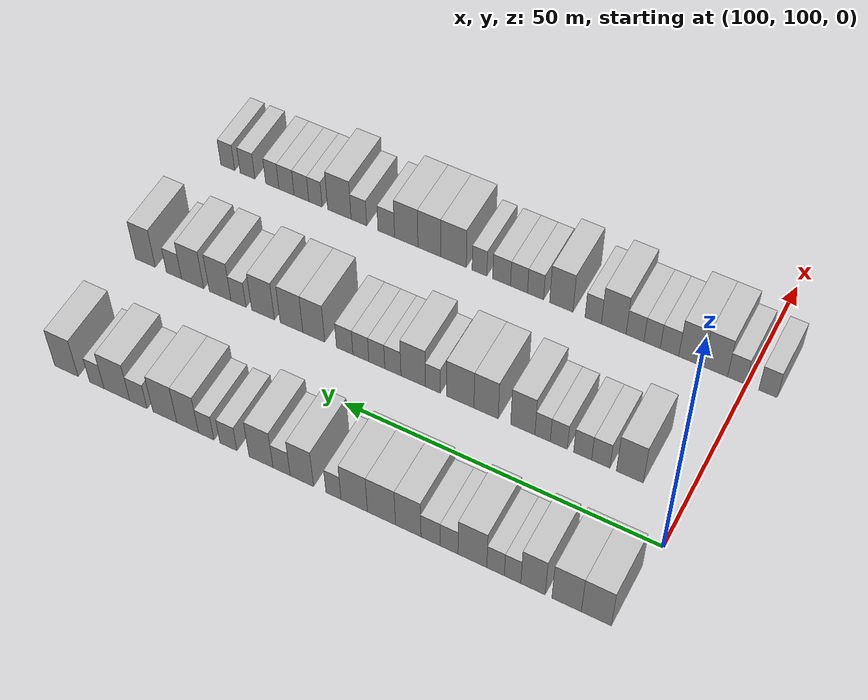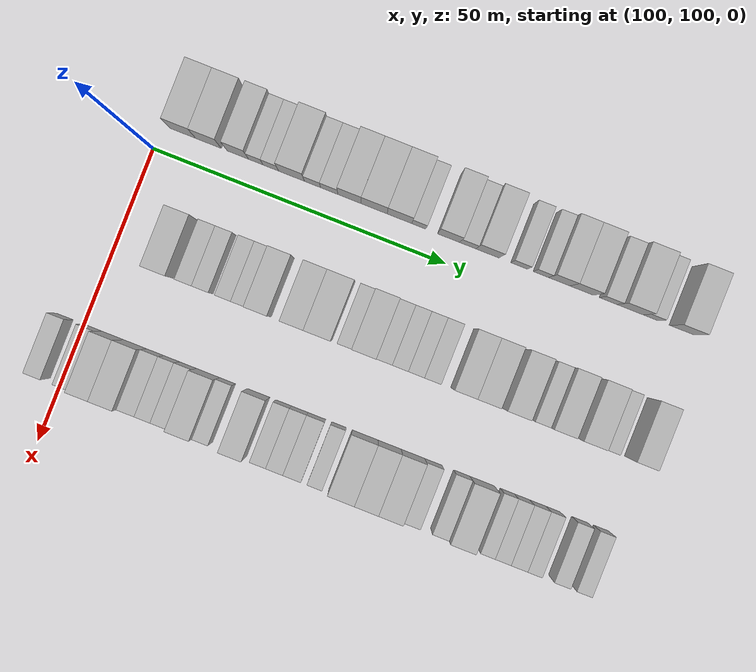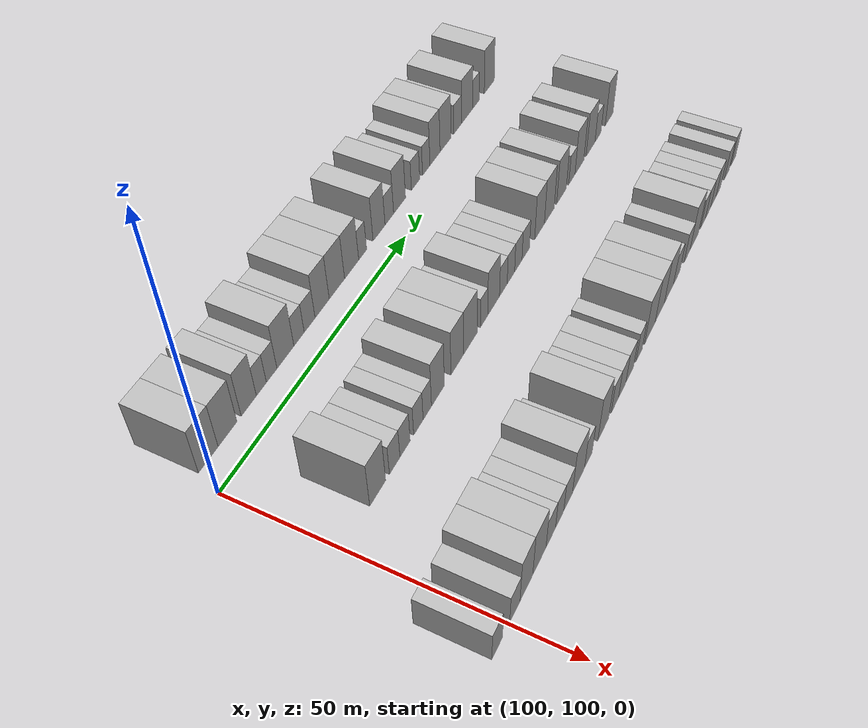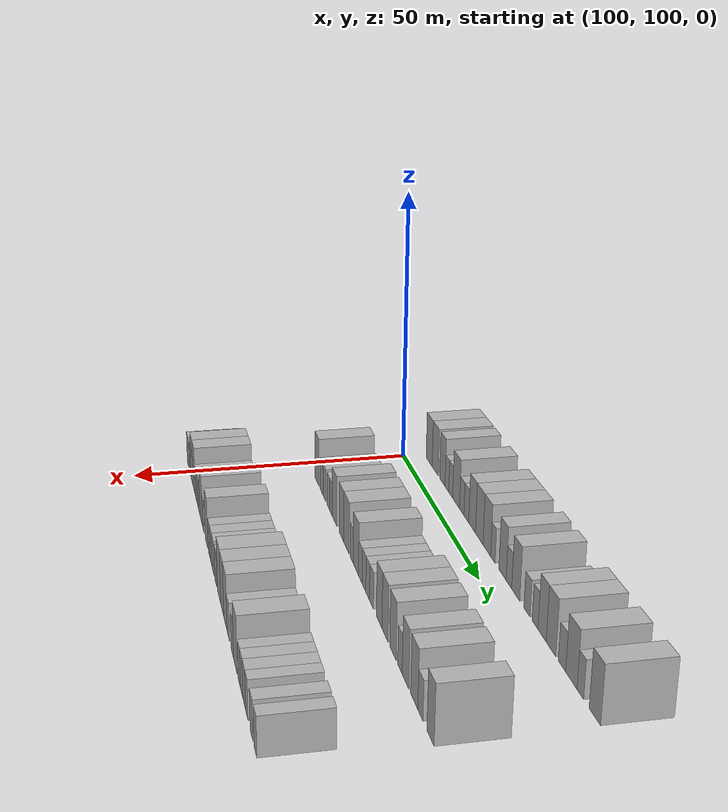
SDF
<sdf version="1.6">
 <world name="default">
  <model name="building_678">
   <static>1</static>
   <pose>91.0000 103.5318 0 0.000000 0.000000 0.000000</pose>
   <link name="link">
    <pose>0 0 4.50 0 0 0</pose>
    <collision name="collision"><geometry><box><size>10.0000 4.4158 9.0000</size></box></geometry></collision>
    <visual name="visual">
     <cast_shadows>0</cast_shadows>
     <geometry><box><size>10.0000 4.4158 9.0000</size></box></geometry>
     <material>
      <script>
       <uri>model://HANNAS_wall/materials/scripts</uri>
       <uri>model://HANNAS_wall/materials/textures</uri>
       <name>vrc/HANNAS_wall</name>
      </script>
     </material>
    </visual>
   </link>
  </model>
  <model name="building_679">
   <static>1</static>
   <pose>91.0000 107.9198 0 0.000000 0.000000 0.000000</pose>
   <link name="link">
    <pose>0 0 4.50 0 0 0</pose>
    <collision name="collision"><geometry><box><size>10.0000 4.3601 9.0000</size></box></geometry></collision>
    <visual name="visual">
     <cast_shadows>0</cast_shadows>
     <geometry><box><size>10.0000 4.3601 9.0000</size></box></geometry>
     <material>
      <script>
       <uri>model://HANNAS_wall/materials/scripts</uri>
       <uri>model://HANNAS_wall/materials/textures</uri>
       <name>vrc/HANNAS_wall</name>
      </script>
     </material>
    </visual>
   </link>
  </model>
  <model name="building_680">
   <static>1</static>
   <pose>91.0000 112.9314 0 0.000000 0.000000 0.000000</pose>
   <link name="link">
    <pose>0 0 4.50 0 0 0</pose>
    <collision name="collision"><geometry><box><size>10.0000 3.6631 9.0000</size></box></geometry></collision>
    <visual name="visual">
     <cast_shadows>0</cast_shadows>
     <geometry><box><size>10.0000 3.6631 9.0000</size></box></geometry>
     <material>
      <script>
       <uri>model://HANNAS_wall/materials/scripts</uri>
       <uri>model://HANNAS_wall/materials/textures</uri>
       <name>vrc/HANNAS_wall</name>
      </script>
     </material>
    </visual>
   </link>
  </model>
  <model name="building_681">
   <static>1</static>
   <pose>91.0000 116.0062 0 0.000000 0.000000 0.000000</pose>
   <link name="link">
    <pose>0 0 3.00 0 0 0</pose>
    <collision name="collision"><geometry><box><size>10.0000 2.4865 6.0000</size></box></geometry></collision>
    <visual name="visual">
     <cast_shadows>0</cast_shadows>
     <geometry><box><size>10.0000 2.4865 6.0000</size></box></geometry>
     <material>
      <script>
       <uri>model://HANNAS_wall/materials/scripts</uri>
       <uri>model://HANNAS_wall/materials/textures</uri>
       <name>vrc/HANNAS_wall</name>
      </script>
     </material>
    </visual>
   </link>
  </model>
  <model name="building_682">
   <static>1</static>
   <pose>91.0000 118.5741 0 0.000000 0.000000 0.000000</pose>
   <link name="link">
    <pose>0 0 3.00 0 0 0</pose>
    <collision name="collision"><geometry><box><size>10.0000 2.6494 6.0000</size></box></geometry></collision>
    <visual name="visual">
     <cast_shadows>0</cast_shadows>
     <geometry><box><size>10.0000 2.6494 6.0000</size></box></geometry>
     <material>
      <script>
       <uri>model://HANNAS_wall/materials/scripts</uri>
       <uri>model://HANNAS_wall/materials/textures</uri>
       <name>vrc/HANNAS_wall</name>
      </script>
     </material>
    </visual>
   </link>
  </model>
  <model name="building_683">
   <static>1</static>
   <pose>91.0000 122.1030 0 0.000000 0.000000 0.000000</pose>
   <link name="link">
    <pose>0 0 4.50 0 0 0</pose>
    <collision name="collision"><geometry><box><size>10.0000 4.4084 9.0000</size></box></geometry></collision>
    <visual name="visual">
     <cast_shadows>0</cast_shadows>
     <geometry><box><size>10.0000 4.4084 9.0000</size></box></geometry>
     <material>
      <script>
       <uri>model://HANNAS_wall/materials/scripts</uri>
       <uri>model://HANNAS_wall/materials/textures</uri>
       <name>vrc/HANNAS_wall</name>
      </script>
     </material>
    </visual>
   </link>
  </model>
  <model name="building_684">
   <static>1</static>
   <pose>91.0000 125.6815 0 0.000000 0.000000 0.000000</pose>
   <link name="link">
    <pose>0 0 3.00 0 0 0</pose>
    <collision name="collision"><geometry><box><size>10.0000 2.7487 6.0000</size></box></geometry></collision>
    <visual name="visual">
     <cast_shadows>0</cast_shadows>
     <geometry><box><size>10.0000 2.7487 6.0000</size></box></geometry>
     <material>
      <script>
       <uri>model://HANNAS_wall/materials/scripts</uri>
       <uri>model://HANNAS_wall/materials/textures</uri>
       <name>vrc/HANNAS_wall</name>
      </script>
     </material>
    </visual>
   </link>
  </model>
  <model name="building_685">
   <static>1</static>
   <pose>91.0000 128.5347 0 0.000000 0.000000 0.000000</pose>
   <link name="link">
    <pose>0 0 3.00 0 0 0</pose>
    <collision name="collision"><geometry><box><size>10.0000 2.9578 6.0000</size></box></geometry></collision>
    <visual name="visual">
     <cast_shadows>0</cast_shadows>
     <geometry><box><size>10.0000 2.9578 6.0000</size></box></geometry>
     <material>
      <script>
       <uri>model://HANNAS_wall/materials/scripts</uri>
       <uri>model://HANNAS_wall/materials/textures</uri>
       <name>vrc/HANNAS_wall</name>
      </script>
     </material>
    </visual>
   </link>
  </model>
  <model name="building_686">
   <static>1</static>
   <pose>91.0000 132.0032 0 0.000000 0.000000 0.000000</pose>
   <link name="link">
    <pose>0 0 4.50 0 0 0</pose>
    <collision name="collision"><geometry><box><size>10.0000 3.9791 9.0000</size></box></geometry></collision>
    <visual name="visual">
     <cast_shadows>0</cast_shadows>
     <geometry><box><size>10.0000 3.9791 9.0000</size></box></geometry>
     <material>
      <script>
       <uri>model://HANNAS_wall/materials/scripts</uri>
       <uri>model://HANNAS_wall/materials/textures</uri>
       <name>vrc/HANNAS_wall</name>
      </script>
     </material>
    </visual>
   </link>
  </model>
  <model name="building_687">
   <static>1</static>
   <pose>91.0000 136.2074 0 0.000000 0.000000 0.000000</pose>
   <link name="link">
    <pose>0 0 4.50 0 0 0</pose>
    <collision name="collision"><geometry><box><size>10.0000 4.4292 9.0000</size></box></geometry></collision>
    <visual name="visual">
     <cast_shadows>0</cast_shadows>
     <geometry><box><size>10.0000 4.4292 9.0000</size></box></geometry>
     <material>
      <script>
       <uri>model://HANNAS_wall/materials/scripts</uri>
       <uri>model://HANNAS_wall/materials/textures</uri>
       <name>vrc/HANNAS_wall</name>
      </script>
     </material>
    </visual>
   </link>
  </model>
  <model name="building_688">
   <static>1</static>
   <pose>91.0000 140.5262 0 0.000000 0.000000 0.000000</pose>
   <link name="link">
    <pose>0 0 4.50 0 0 0</pose>
    <collision name="collision"><geometry><box><size>10.0000 4.2083 9.0000</size></box></geometry></collision>
    <visual name="visual">
     <cast_shadows>0</cast_shadows>
     <geometry><box><size>10.0000 4.2083 9.0000</size></box></geometry>
     <material>
      <script>
       <uri>model://HANNAS_wall/materials/scripts</uri>
       <uri>model://HANNAS_wall/materials/textures</uri>
       <name>vrc/HANNAS_wall</name>
      </script>
     </material>
    </visual>
   </link>
  </model>
  <model name="building_689">
   <static>1</static>
   <pose>91.0000 143.8343 0 0.000000 0.000000 0.000000</pose>
   <link name="link">
    <pose>0 0 3.00 0 0 0</pose>
    <collision name="collision"><geometry><box><size>10.0000 2.4079 6.0000</size></box></geometry></collision>
    <visual name="visual">
     <cast_shadows>0</cast_shadows>
     <geometry><box><size>10.0000 2.4079 6.0000</size></box></geometry>
     <material>
      <script>
       <uri>model://HANNAS_wall/materials/scripts</uri>
       <uri>model://HANNAS_wall/materials/textures</uri>
       <name>vrc/HANNAS_wall</name>
      </script>
     </material>
    </visual>
   </link>
  </model>
  <model name="building_690">
   <static>1</static>
   <pose>91.0000 148.9311 0 0.000000 0.000000 0.000000</pose>
   <link name="link">
    <pose>0 0 4.50 0 0 0</pose>
    <collision name="collision"><geometry><box><size>10.0000 3.7859 9.0000</size></box></geometry></collision>
    <visual name="visual">
     <cast_shadows>0</cast_shadows>
     <geometry><box><size>10.0000 3.7859 9.0000</size></box></geometry>
     <material>
      <script>
       <uri>model://HANNAS_wall/materials/scripts</uri>
       <uri>model://HANNAS_wall/materials/textures</uri>
       <name>vrc/HANNAS_wall</name>
      </script>
     </material>
    </visual>
   </link>
  </model>
  <model name="building_691">
   <static>1</static>
   <pose>91.0000 152.2202 0 0.000000 0.000000 0.000000</pose>
   <link name="link">
    <pose>0 0 3.00 0 0 0</pose>
    <collision name="collision"><geometry><box><size>10.0000 2.7922 6.0000</size></box></geometry></collision>
    <visual name="visual">
     <cast_shadows>0</cast_shadows>
     <geometry><box><size>10.0000 2.7922 6.0000</size></box></geometry>
     <material>
      <script>
       <uri>model://HANNAS_wall/materials/scripts</uri>
       <uri>model://HANNAS_wall/materials/textures</uri>
       <name>vrc/HANNAS_wall</name>
      </script>
     </material>
    </visual>
   </link>
  </model>
  <model name="building_692">
   <static>1</static>
   <pose>91.0000 155.5841 0 0.000000 0.000000 0.000000</pose>
   <link name="link">
    <pose>0 0 4.50 0 0 0</pose>
    <collision name="collision"><geometry><box><size>10.0000 3.9356 9.0000</size></box></geometry></collision>
    <visual name="visual">
     <cast_shadows>0</cast_shadows>
     <geometry><box><size>10.0000 3.9356 9.0000</size></box></geometry>
     <material>
      <script>
       <uri>model://HANNAS_wall/materials/scripts</uri>
       <uri>model://HANNAS_wall/materials/textures</uri>
       <name>vrc/HANNAS_wall</name>
      </script>
     </material>
    </visual>
   </link>
  </model>
  <model name="building_693">
   <static>1</static>
   <pose>91.0000 160.9697 0 0.000000 0.000000 0.000000</pose>
   <link name="link">
    <pose>0 0 3.00 0 0 0</pose>
    <collision name="collision"><geometry><box><size>10.0000 2.8356 6.0000</size></box></geometry></collision>
    <visual name="visual">
     <cast_shadows>0</cast_shadows>
     <geometry><box><size>10.0000 2.8356 6.0000</size></box></geometry>
     <material>
      <script>
       <uri>model://HANNAS_wall/materials/scripts</uri>
       <uri>model://HANNAS_wall/materials/textures</uri>
       <name>vrc/HANNAS_wall</name>
      </script>
     </material>
    </visual>
   </link>
  </model>
  <model name="building_694">
   <static>1</static>
   <pose>91.0000 164.6876 0 0.000000 0.000000 0.000000</pose>
   <link name="link">
    <pose>0 0 3.00 0 0 0</pose>
    <collision name="collision"><geometry><box><size>10.0000 2.6003 6.0000</size></box></geometry></collision>
    <visual name="visual">
     <cast_shadows>0</cast_shadows>
     <geometry><box><size>10.0000 2.6003 6.0000</size></box></geometry>
     <material>
      <script>
       <uri>model://HANNAS_wall/materials/scripts</uri>
       <uri>model://HANNAS_wall/materials/textures</uri>
       <name>vrc/HANNAS_wall</name>
      </script>
     </material>
    </visual>
   </link>
  </model>
  <model name="building_695">
   <static>1</static>
   <pose>91.0000 167.8109 0 0.000000 0.000000 0.000000</pose>
   <link name="link">
    <pose>0 0 4.50 0 0 0</pose>
    <collision name="collision"><geometry><box><size>10.0000 3.6463 9.0000</size></box></geometry></collision>
    <visual name="visual">
     <cast_shadows>0</cast_shadows>
     <geometry><box><size>10.0000 3.6463 9.0000</size></box></geometry>
     <material>
      <script>
       <uri>model://HANNAS_wall/materials/scripts</uri>
       <uri>model://HANNAS_wall/materials/textures</uri>
       <name>vrc/HANNAS_wall</name>
      </script>
     </material>
    </visual>
   </link>
  </model>
  <model name="building_696">
   <static>1</static>
   <pose>91.0000 171.6643 0 0.000000 0.000000 0.000000</pose>
   <link name="link">
    <pose>0 0 4.50 0 0 0</pose>
    <collision name="collision"><geometry><box><size>10.0000 4.0604 9.0000</size></box></geometry></collision>
    <visual name="visual">
     <cast_shadows>0</cast_shadows>
     <geometry><box><size>10.0000 4.0604 9.0000</size></box></geometry>
     <material>
      <script>
       <uri>model://HANNAS_wall/materials/scripts</uri>
       <uri>model://HANNAS_wall/materials/textures</uri>
       <name>vrc/HANNAS_wall</name>
      </script>
     </material>
    </visual>
   </link>
  </model>
  <model name="building_697">
   <static>1</static>
   <pose>91.0000 176.1811 0 0.000000 0.000000 0.000000</pose>
   <link name="link">
    <pose>0 0 3.00 0 0 0</pose>
    <collision name="collision"><geometry><box><size>10.0000 2.9731 6.0000</size></box></geometry></collision>
    <visual name="visual">
     <cast_shadows>0</cast_shadows>
     <geometry><box><size>10.0000 2.9731 6.0000</size></box></geometry>
     <material>
      <script>
       <uri>model://HANNAS_wall/materials/scripts</uri>
       <uri>model://HANNAS_wall/materials/textures</uri>
       <name>vrc/HANNAS_wall</name>
      </script>
     </material>
    </visual>
   </link>
  </model>
  <model name="building_698">
   <static>1</static>
   <pose>91.0000 179.8894 0 0.000000 0.000000 0.000000</pose>
   <link name="link">
    <pose>0 0 4.50 0 0 0</pose>
    <collision name="collision"><geometry><box><size>10.0000 4.4437 9.0000</size></box></geometry></collision>
    <visual name="visual">
     <cast_shadows>0</cast_shadows>
     <geometry><box><size>10.0000 4.4437 9.0000</size></box></geometry>
     <material>
      <script>
       <uri>model://HANNAS_wall/materials/scripts</uri>
       <uri>model://HANNAS_wall/materials/textures</uri>
       <name>vrc/HANNAS_wall</name>
      </script>
     </material>
    </visual>
   </link>
  </model>
  <model name="building_699">
   <static>1</static>
   <pose>91.0000 183.3771 0 0.000000 0.000000 0.000000</pose>
   <link name="link">
    <pose>0 0 3.00 0 0 0</pose>
    <collision name="collision"><geometry><box><size>10.0000 2.5316 6.0000</size></box></geometry></collision>
    <visual name="visual">
     <cast_shadows>0</cast_shadows>
     <geometry><box><size>10.0000 2.5316 6.0000</size></box></geometry>
     <material>
      <script>
       <uri>model://HANNAS_wall/materials/scripts</uri>
       <uri>model://HANNAS_wall/materials/textures</uri>
       <name>vrc/HANNAS_wall</name>
      </script>
     </material>
    </visual>
   </link>
  </model>
  <model name="building_700">
   <static>1</static>
   <pose>91.0000 188.6974 0 0.000000 0.000000 0.000000</pose>
   <link name="link">
    <pose>0 0 4.50 0 0 0</pose>
    <collision name="collision"><geometry><box><size>10.0000 4.1090 9.0000</size></box></geometry></collision>
    <visual name="visual">
     <cast_shadows>0</cast_shadows>
     <geometry><box><size>10.0000 4.1090 9.0000</size></box></geometry>
     <material>
      <script>
       <uri>model://HANNAS_wall/materials/scripts</uri>
       <uri>model://HANNAS_wall/materials/textures</uri>
       <name>vrc/HANNAS_wall</name>
      </script>
     </material>
    </visual>
   </link>
  </model>
  <model name="building_871">
   <static>1</static>
   <pose>113.0000 108.6483 0 0.000000 0.000000 0.000000</pose>
   <link name="link">
    <pose>0 0 4.50 0 0 0</pose>
    <collision name="collision"><geometry><box><size>10.0000 4.1203 9.0000</size></box></geometry></collision>
    <visual name="visual">
     <cast_shadows>0</cast_shadows>
     <geometry><box><size>10.0000 4.1203 9.0000</size></box></geometry>
     <material>
      <script>
       <uri>model://HANNAS_wall/materials/scripts</uri>
       <uri>model://HANNAS_wall/materials/textures</uri>
       <name>vrc/HANNAS_wall</name>
      </script>
     </material>
    </visual>
   </link>
  </model>
  <model name="building_872">
   <static>1</static>
   <pose>113.0000 113.1265 0 0.000000 0.000000 0.000000</pose>
   <link name="link">
    <pose>0 0 3.00 0 0 0</pose>
    <collision name="collision"><geometry><box><size>10.0000 2.8360 6.0000</size></box></geometry></collision>
    <visual name="visual">
     <cast_shadows>0</cast_shadows>
     <geometry><box><size>10.0000 2.8360 6.0000</size></box></geometry>
     <material>
      <script>
       <uri>model://HANNAS_wall/materials/scripts</uri>
       <uri>model://HANNAS_wall/materials/textures</uri>
       <name>vrc/HANNAS_wall</name>
      </script>
     </material>
    </visual>
   </link>
  </model>
  <model name="building_873">
   <static>1</static>
   <pose>113.0000 115.9501 0 0.000000 0.000000 0.000000</pose>
   <link name="link">
    <pose>0 0 3.00 0 0 0</pose>
    <collision name="collision"><geometry><box><size>10.0000 2.8113 6.0000</size></box></geometry></collision>
    <visual name="visual">
     <cast_shadows>0</cast_shadows>
     <geometry><box><size>10.0000 2.8113 6.0000</size></box></geometry>
     <material>
      <script>
       <uri>model://HANNAS_wall/materials/scripts</uri>
       <uri>model://HANNAS_wall/materials/textures</uri>
       <name>vrc/HANNAS_wall</name>
      </script>
     </material>
    </visual>
   </link>
  </model>
  <model name="building_874">
   <static>1</static>
   <pose>113.0000 119.6935 0 0.000000 0.000000 0.000000</pose>
   <link name="link">
    <pose>0 0 3.00 0 0 0</pose>
    <collision name="collision"><geometry><box><size>10.0000 2.6755 6.0000</size></box></geometry></collision>
    <visual name="visual">
     <cast_shadows>0</cast_shadows>
     <geometry><box><size>10.0000 2.6755 6.0000</size></box></geometry>
     <material>
      <script>
       <uri>model://HANNAS_wall/materials/scripts</uri>
       <uri>model://HANNAS_wall/materials/textures</uri>
       <name>vrc/HANNAS_wall</name>
      </script>
     </material>
    </visual>
   </link>
  </model>
  <model name="building_875">
   <static>1</static>
   <pose>113.0000 122.2417 0 0.000000 0.000000 0.000000</pose>
   <link name="link">
    <pose>0 0 3.00 0 0 0</pose>
    <collision name="collision"><geometry><box><size>10.0000 2.4209 6.0000</size></box></geometry></collision>
    <visual name="visual">
     <cast_shadows>0</cast_shadows>
     <geometry><box><size>10.0000 2.4209 6.0000</size></box></geometry>
     <material>
      <script>
       <uri>model://HANNAS_wall/materials/scripts</uri>
       <uri>model://HANNAS_wall/materials/textures</uri>
       <name>vrc/HANNAS_wall</name>
      </script>
     </material>
    </visual>
   </link>
  </model>
  <model name="building_876">
   <static>1</static>
   <pose>113.0000 125.3776 0 0.000000 0.000000 0.000000</pose>
   <link name="link">
    <pose>0 0 4.50 0 0 0</pose>
    <collision name="collision"><geometry><box><size>10.0000 3.8511 9.0000</size></box></geometry></collision>
    <visual name="visual">
     <cast_shadows>0</cast_shadows>
     <geometry><box><size>10.0000 3.8511 9.0000</size></box></geometry>
     <material>
      <script>
       <uri>model://HANNAS_wall/materials/scripts</uri>
       <uri>model://HANNAS_wall/materials/textures</uri>
       <name>vrc/HANNAS_wall</name>
      </script>
     </material>
    </visual>
   </link>
  </model>
  <model name="building_877">
   <static>1</static>
   <pose>113.0000 131.2564 0 0.000000 0.000000 0.000000</pose>
   <link name="link">
    <pose>0 0 4.50 0 0 0</pose>
    <collision name="collision"><geometry><box><size>10.0000 3.9064 9.0000</size></box></geometry></collision>
    <visual name="visual">
     <cast_shadows>0</cast_shadows>
     <geometry><box><size>10.0000 3.9064 9.0000</size></box></geometry>
     <material>
      <script>
       <uri>model://HANNAS_wall/materials/scripts</uri>
       <uri>model://HANNAS_wall/materials/textures</uri>
       <name>vrc/HANNAS_wall</name>
      </script>
     </material>
    </visual>
   </link>
  </model>
  <model name="building_878">
   <static>1</static>
   <pose>113.0000 135.4418 0 0.000000 0.000000 0.000000</pose>
   <link name="link">
    <pose>0 0 4.50 0 0 0</pose>
    <collision name="collision"><geometry><box><size>10.0000 4.4646 9.0000</size></box></geometry></collision>
    <visual name="visual">
     <cast_shadows>0</cast_shadows>
     <geometry><box><size>10.0000 4.4646 9.0000</size></box></geometry>
     <material>
      <script>
       <uri>model://HANNAS_wall/materials/scripts</uri>
       <uri>model://HANNAS_wall/materials/textures</uri>
       <name>vrc/HANNAS_wall</name>
      </script>
     </material>
    </visual>
   </link>
  </model>
  <model name="building_879">
   <static>1</static>
   <pose>113.0000 139.8930 0 0.000000 0.000000 0.000000</pose>
   <link name="link">
    <pose>0 0 3.00 0 0 0</pose>
    <collision name="collision"><geometry><box><size>10.0000 2.4376 6.0000</size></box></geometry></collision>
    <visual name="visual">
     <cast_shadows>0</cast_shadows>
     <geometry><box><size>10.0000 2.4376 6.0000</size></box></geometry>
     <material>
      <script>
       <uri>model://HANNAS_wall/materials/scripts</uri>
       <uri>model://HANNAS_wall/materials/textures</uri>
       <name>vrc/HANNAS_wall</name>
      </script>
     </material>
    </visual>
   </link>
  </model>
  <model name="building_880">
   <static>1</static>
   <pose>113.0000 143.1326 0 0.000000 0.000000 0.000000</pose>
   <link name="link">
    <pose>0 0 4.50 0 0 0</pose>
    <collision name="collision"><geometry><box><size>10.0000 4.0417 9.0000</size></box></geometry></collision>
    <visual name="visual">
     <cast_shadows>0</cast_shadows>
     <geometry><box><size>10.0000 4.0417 9.0000</size></box></geometry>
     <material>
      <script>
       <uri>model://HANNAS_wall/materials/scripts</uri>
       <uri>model://HANNAS_wall/materials/textures</uri>
       <name>vrc/HANNAS_wall</name>
      </script>
     </material>
    </visual>
   </link>
  </model>
  <model name="building_881">
   <static>1</static>
   <pose>113.0000 146.4966 0 0.000000 0.000000 0.000000</pose>
   <link name="link">
    <pose>0 0 3.00 0 0 0</pose>
    <collision name="collision"><geometry><box><size>10.0000 2.6862 6.0000</size></box></geometry></collision>
    <visual name="visual">
     <cast_shadows>0</cast_shadows>
     <geometry><box><size>10.0000 2.6862 6.0000</size></box></geometry>
     <material>
      <script>
       <uri>model://HANNAS_wall/materials/scripts</uri>
       <uri>model://HANNAS_wall/materials/textures</uri>
       <name>vrc/HANNAS_wall</name>
      </script>
     </material>
    </visual>
   </link>
  </model>
  <model name="building_882">
   <static>1</static>
   <pose>113.0000 149.1691 0 0.000000 0.000000 0.000000</pose>
   <link name="link">
    <pose>0 0 3.00 0 0 0</pose>
    <collision name="collision"><geometry><box><size>10.0000 2.6587 6.0000</size></box></geometry></collision>
    <visual name="visual">
     <cast_shadows>0</cast_shadows>
     <geometry><box><size>10.0000 2.6587 6.0000</size></box></geometry>
     <material>
      <script>
       <uri>model://HANNAS_wall/materials/scripts</uri>
       <uri>model://HANNAS_wall/materials/textures</uri>
       <name>vrc/HANNAS_wall</name>
      </script>
     </material>
    </visual>
   </link>
  </model>
  <model name="building_883">
   <static>1</static>
   <pose>113.0000 151.8400 0 0.000000 0.000000 0.000000</pose>
   <link name="link">
    <pose>0 0 3.00 0 0 0</pose>
    <collision name="collision"><geometry><box><size>10.0000 2.6831 6.0000</size></box></geometry></collision>
    <visual name="visual">
     <cast_shadows>0</cast_shadows>
     <geometry><box><size>10.0000 2.6831 6.0000</size></box></geometry>
     <material>
      <script>
       <uri>model://HANNAS_wall/materials/scripts</uri>
       <uri>model://HANNAS_wall/materials/textures</uri>
       <name>vrc/HANNAS_wall</name>
      </script>
     </material>
    </visual>
   </link>
  </model>
  <model name="building_884">
   <static>1</static>
   <pose>113.0000 154.5685 0 0.000000 0.000000 0.000000</pose>
   <link name="link">
    <pose>0 0 3.00 0 0 0</pose>
    <collision name="collision"><geometry><box><size>10.0000 2.7739 6.0000</size></box></geometry></collision>
    <visual name="visual">
     <cast_shadows>0</cast_shadows>
     <geometry><box><size>10.0000 2.7739 6.0000</size></box></geometry>
     <material>
      <script>
       <uri>model://HANNAS_wall/materials/scripts</uri>
       <uri>model://HANNAS_wall/materials/textures</uri>
       <name>vrc/HANNAS_wall</name>
      </script>
     </material>
    </visual>
   </link>
  </model>
  <model name="building_885">
   <static>1</static>
   <pose>113.0000 159.8248 0 0.000000 0.000000 0.000000</pose>
   <link name="link">
    <pose>0 0 4.50 0 0 0</pose>
    <collision name="collision"><geometry><box><size>10.0000 3.7388 9.0000</size></box></geometry></collision>
    <visual name="visual">
     <cast_shadows>0</cast_shadows>
     <geometry><box><size>10.0000 3.7388 9.0000</size></box></geometry>
     <material>
      <script>
       <uri>model://HANNAS_wall/materials/scripts</uri>
       <uri>model://HANNAS_wall/materials/textures</uri>
       <name>vrc/HANNAS_wall</name>
      </script>
     </material>
    </visual>
   </link>
  </model>
  <model name="building_886">
   <static>1</static>
   <pose>113.0000 163.6430 0 0.000000 0.000000 0.000000</pose>
   <link name="link">
    <pose>0 0 4.50 0 0 0</pose>
    <collision name="collision"><geometry><box><size>10.0000 3.8976 9.0000</size></box></geometry></collision>
    <visual name="visual">
     <cast_shadows>0</cast_shadows>
     <geometry><box><size>10.0000 3.8976 9.0000</size></box></geometry>
     <material>
      <script>
       <uri>model://HANNAS_wall/materials/scripts</uri>
       <uri>model://HANNAS_wall/materials/textures</uri>
       <name>vrc/HANNAS_wall</name>
      </script>
     </material>
    </visual>
   </link>
  </model>
  <model name="building_887">
   <static>1</static>
   <pose>113.0000 168.5668 0 0.000000 0.000000 0.000000</pose>
   <link name="link">
    <pose>0 0 4.50 0 0 0</pose>
    <collision name="collision"><geometry><box><size>10.0000 3.9501 9.0000</size></box></geometry></collision>
    <visual name="visual">
     <cast_shadows>0</cast_shadows>
     <geometry><box><size>10.0000 3.9501 9.0000</size></box></geometry>
     <material>
      <script>
       <uri>model://HANNAS_wall/materials/scripts</uri>
       <uri>model://HANNAS_wall/materials/textures</uri>
       <name>vrc/HANNAS_wall</name>
      </script>
     </material>
    </visual>
   </link>
  </model>
  <model name="building_888">
   <static>1</static>
   <pose>113.0000 172.8603 0 0.000000 0.000000 0.000000</pose>
   <link name="link">
    <pose>0 0 3.00 0 0 0</pose>
    <collision name="collision"><geometry><box><size>10.0000 2.6370 6.0000</size></box></geometry></collision>
    <visual name="visual">
     <cast_shadows>0</cast_shadows>
     <geometry><box><size>10.0000 2.6370 6.0000</size></box></geometry>
     <material>
      <script>
       <uri>model://HANNAS_wall/materials/scripts</uri>
       <uri>model://HANNAS_wall/materials/textures</uri>
       <name>vrc/HANNAS_wall</name>
      </script>
     </material>
    </visual>
   </link>
  </model>
  <model name="building_889">
   <static>1</static>
   <pose>113.0000 176.0873 0 0.000000 0.000000 0.000000</pose>
   <link name="link">
    <pose>0 0 4.50 0 0 0</pose>
    <collision name="collision"><geometry><box><size>10.0000 3.8169 9.0000</size></box></geometry></collision>
    <visual name="visual">
     <cast_shadows>0</cast_shadows>
     <geometry><box><size>10.0000 3.8169 9.0000</size></box></geometry>
     <material>
      <script>
       <uri>model://HANNAS_wall/materials/scripts</uri>
       <uri>model://HANNAS_wall/materials/textures</uri>
       <name>vrc/HANNAS_wall</name>
      </script>
     </material>
    </visual>
   </link>
  </model>
  <model name="building_890">
   <static>1</static>
   <pose>113.0000 180.9705 0 0.000000 0.000000 0.000000</pose>
   <link name="link">
    <pose>0 0 4.50 0 0 0</pose>
    <collision name="collision"><geometry><box><size>10.0000 3.9494 9.0000</size></box></geometry></collision>
    <visual name="visual">
     <cast_shadows>0</cast_shadows>
     <geometry><box><size>10.0000 3.9494 9.0000</size></box></geometry>
     <material>
      <script>
       <uri>model://HANNAS_wall/materials/scripts</uri>
       <uri>model://HANNAS_wall/materials/textures</uri>
       <name>vrc/HANNAS_wall</name>
      </script>
     </material>
    </visual>
   </link>
  </model>
  <model name="building_891">
   <static>1</static>
   <pose>113.0000 184.3043 0 0.000000 0.000000 0.000000</pose>
   <link name="link">
    <pose>0 0 3.00 0 0 0</pose>
    <collision name="collision"><geometry><box><size>10.0000 2.7182 6.0000</size></box></geometry></collision>
    <visual name="visual">
     <cast_shadows>0</cast_shadows>
     <geometry><box><size>10.0000 2.7182 6.0000</size></box></geometry>
     <material>
      <script>
       <uri>model://HANNAS_wall/materials/scripts</uri>
       <uri>model://HANNAS_wall/materials/textures</uri>
       <name>vrc/HANNAS_wall</name>
      </script>
     </material>
    </visual>
   </link>
  </model>
  <model name="building_892">
   <static>1</static>
   <pose>113.0000 189.4659 0 0.000000 0.000000 0.000000</pose>
   <link name="link">
    <pose>0 0 4.50 0 0 0</pose>
    <collision name="collision"><geometry><box><size>10.0000 3.6050 9.0000</size></box></geometry></collision>
    <visual name="visual">
     <cast_shadows>0</cast_shadows>
     <geometry><box><size>10.0000 3.6050 9.0000</size></box></geometry>
     <material>
      <script>
       <uri>model://HANNAS_wall/materials/scripts</uri>
       <uri>model://HANNAS_wall/materials/textures</uri>
       <name>vrc/HANNAS_wall</name>
      </script>
     </material>
    </visual>
   </link>
  </model>
  <model name="building_1059">
   <static>1</static>
   <pose>135.0000 96.7342 0 0.000000 0.000000 0.000000</pose>
   <link name="link">
    <pose>0 0 3.00 0 0 0</pose>
    <collision name="collision"><geometry><box><size>10.0000 2.8743 6.0000</size></box></geometry></collision>
    <visual name="visual">
     <cast_shadows>0</cast_shadows>
     <geometry><box><size>10.0000 2.8743 6.0000</size></box></geometry>
     <material>
      <script>
       <uri>model://HANNAS_wall/materials/scripts</uri>
       <uri>model://HANNAS_wall/materials/textures</uri>
       <name>vrc/HANNAS_wall</name>
      </script>
     </material>
    </visual>
   </link>
  </model>
  <model name="building_1060">
   <static>1</static>
   <pose>135.0000 101.6142 0 0.000000 0.000000 0.000000</pose>
   <link name="link">
    <pose>0 0 3.00 0 0 0</pose>
    <collision name="collision"><geometry><box><size>10.0000 2.8858 6.0000</size></box></geometry></collision>
    <visual name="visual">
     <cast_shadows>0</cast_shadows>
     <geometry><box><size>10.0000 2.8858 6.0000</size></box></geometry>
     <material>
      <script>
       <uri>model://HANNAS_wall/materials/scripts</uri>
       <uri>model://HANNAS_wall/materials/textures</uri>
       <name>vrc/HANNAS_wall</name>
      </script>
     </material>
    </visual>
   </link>
  </model>
  <model name="building_1061">
   <static>1</static>
   <pose>135.0000 104.9315 0 0.000000 0.000000 0.000000</pose>
   <link name="link">
    <pose>0 0 4.50 0 0 0</pose>
    <collision name="collision"><geometry><box><size>10.0000 3.7489 9.0000</size></box></geometry></collision>
    <visual name="visual">
     <cast_shadows>0</cast_shadows>
     <geometry><box><size>10.0000 3.7489 9.0000</size></box></geometry>
     <material>
      <script>
       <uri>model://HANNAS_wall/materials/scripts</uri>
       <uri>model://HANNAS_wall/materials/textures</uri>
       <name>vrc/HANNAS_wall</name>
      </script>
     </material>
    </visual>
   </link>
  </model>
  <model name="building_1062">
   <static>1</static>
   <pose>135.0000 108.7953 0 0.000000 0.000000 0.000000</pose>
   <link name="link">
    <pose>0 0 4.50 0 0 0</pose>
    <collision name="collision"><geometry><box><size>10.0000 3.9786 9.0000</size></box></geometry></collision>
    <visual name="visual">
     <cast_shadows>0</cast_shadows>
     <geometry><box><size>10.0000 3.9786 9.0000</size></box></geometry>
     <material>
      <script>
       <uri>model://HANNAS_wall/materials/scripts</uri>
       <uri>model://HANNAS_wall/materials/textures</uri>
       <name>vrc/HANNAS_wall</name>
      </script>
     </material>
    </visual>
   </link>
  </model>
  <model name="building_1063">
   <static>1</static>
   <pose>135.0000 112.2618 0 0.000000 0.000000 0.000000</pose>
   <link name="link">
    <pose>0 0 3.00 0 0 0</pose>
    <collision name="collision"><geometry><box><size>10.0000 2.9543 6.0000</size></box></geometry></collision>
    <visual name="visual">
     <cast_shadows>0</cast_shadows>
     <geometry><box><size>10.0000 2.9543 6.0000</size></box></geometry>
     <material>
      <script>
       <uri>model://HANNAS_wall/materials/scripts</uri>
       <uri>model://HANNAS_wall/materials/textures</uri>
       <name>vrc/HANNAS_wall</name>
      </script>
     </material>
    </visual>
   </link>
  </model>
  <model name="building_1064">
   <static>1</static>
   <pose>135.0000 115.0536 0 0.000000 0.000000 0.000000</pose>
   <link name="link">
    <pose>0 0 3.00 0 0 0</pose>
    <collision name="collision"><geometry><box><size>10.0000 2.6293 6.0000</size></box></geometry></collision>
    <visual name="visual">
     <cast_shadows>0</cast_shadows>
     <geometry><box><size>10.0000 2.6293 6.0000</size></box></geometry>
     <material>
      <script>
       <uri>model://HANNAS_wall/materials/scripts</uri>
       <uri>model://HANNAS_wall/materials/textures</uri>
       <name>vrc/HANNAS_wall</name>
      </script>
     </material>
    </visual>
   </link>
  </model>
  <model name="building_1065">
   <static>1</static>
   <pose>135.0000 117.8059 0 0.000000 0.000000 0.000000</pose>
   <link name="link">
    <pose>0 0 3.00 0 0 0</pose>
    <collision name="collision"><geometry><box><size>10.0000 2.8754 6.0000</size></box></geometry></collision>
    <visual name="visual">
     <cast_shadows>0</cast_shadows>
     <geometry><box><size>10.0000 2.8754 6.0000</size></box></geometry>
     <material>
      <script>
       <uri>model://HANNAS_wall/materials/scripts</uri>
       <uri>model://HANNAS_wall/materials/textures</uri>
       <name>vrc/HANNAS_wall</name>
      </script>
     </material>
    </visual>
   </link>
  </model>
  <model name="building_1066">
   <static>1</static>
   <pose>135.0000 121.2598 0 0.000000 0.000000 0.000000</pose>
   <link name="link">
    <pose>0 0 4.50 0 0 0</pose>
    <collision name="collision"><geometry><box><size>10.0000 4.0324 9.0000</size></box></geometry></collision>
    <visual name="visual">
     <cast_shadows>0</cast_shadows>
     <geometry><box><size>10.0000 4.0324 9.0000</size></box></geometry>
     <material>
      <script>
       <uri>model://HANNAS_wall/materials/scripts</uri>
       <uri>model://HANNAS_wall/materials/textures</uri>
       <name>vrc/HANNAS_wall</name>
      </script>
     </material>
    </visual>
   </link>
  </model>
  <model name="building_1067">
   <static>1</static>
   <pose>135.0000 124.6102 0 0.000000 0.000000 0.000000</pose>
   <link name="link">
    <pose>0 0 3.00 0 0 0</pose>
    <collision name="collision"><geometry><box><size>10.0000 2.6684 6.0000</size></box></geometry></collision>
    <visual name="visual">
     <cast_shadows>0</cast_shadows>
     <geometry><box><size>10.0000 2.6684 6.0000</size></box></geometry>
     <material>
      <script>
       <uri>model://HANNAS_wall/materials/scripts</uri>
       <uri>model://HANNAS_wall/materials/textures</uri>
       <name>vrc/HANNAS_wall</name>
      </script>
     </material>
    </visual>
   </link>
  </model>
  <model name="building_1068">
   <static>1</static>
   <pose>135.0000 129.8795 0 0.000000 0.000000 0.000000</pose>
   <link name="link">
    <pose>0 0 4.50 0 0 0</pose>
    <collision name="collision"><geometry><box><size>10.0000 3.8702 9.0000</size></box></geometry></collision>
    <visual name="visual">
     <cast_shadows>0</cast_shadows>
     <geometry><box><size>10.0000 3.8702 9.0000</size></box></geometry>
     <material>
      <script>
       <uri>model://HANNAS_wall/materials/scripts</uri>
       <uri>model://HANNAS_wall/materials/textures</uri>
       <name>vrc/HANNAS_wall</name>
      </script>
     </material>
    </visual>
   </link>
  </model>
  <model name="building_1069">
   <static>1</static>
   <pose>135.0000 134.1645 0 0.000000 0.000000 0.000000</pose>
   <link name="link">
    <pose>0 0 3.00 0 0 0</pose>
    <collision name="collision"><geometry><box><size>10.0000 2.6997 6.0000</size></box></geometry></collision>
    <visual name="visual">
     <cast_shadows>0</cast_shadows>
     <geometry><box><size>10.0000 2.6997 6.0000</size></box></geometry>
     <material>
      <script>
       <uri>model://HANNAS_wall/materials/scripts</uri>
       <uri>model://HANNAS_wall/materials/textures</uri>
       <name>vrc/HANNAS_wall</name>
      </script>
     </material>
    </visual>
   </link>
  </model>
  <model name="building_1070">
   <static>1</static>
   <pose>135.0000 136.9423 0 0.000000 0.000000 0.000000</pose>
   <link name="link">
    <pose>0 0 3.00 0 0 0</pose>
    <collision name="collision"><geometry><box><size>10.0000 2.8559 6.0000</size></box></geometry></collision>
    <visual name="visual">
     <cast_shadows>0</cast_shadows>
     <geometry><box><size>10.0000 2.8559 6.0000</size></box></geometry>
     <material>
      <script>
       <uri>model://HANNAS_wall/materials/scripts</uri>
       <uri>model://HANNAS_wall/materials/textures</uri>
       <name>vrc/HANNAS_wall</name>
      </script>
     </material>
    </visual>
   </link>
  </model>
  <model name="building_1071">
   <static>1</static>
   <pose>135.0000 139.8686 0 0.000000 0.000000 0.000000</pose>
   <link name="link">
    <pose>0 0 3.00 0 0 0</pose>
    <collision name="collision"><geometry><box><size>10.0000 2.9967 6.0000</size></box></geometry></collision>
    <visual name="visual">
     <cast_shadows>0</cast_shadows>
     <geometry><box><size>10.0000 2.9967 6.0000</size></box></geometry>
     <material>
      <script>
       <uri>model://HANNAS_wall/materials/scripts</uri>
       <uri>model://HANNAS_wall/materials/textures</uri>
       <name>vrc/HANNAS_wall</name>
      </script>
     </material>
    </visual>
   </link>
  </model>
  <model name="building_1072">
   <static>1</static>
   <pose>135.0000 143.6170 0 0.000000 0.000000 0.000000</pose>
   <link name="link">
    <pose>0 0 3.00 0 0 0</pose>
    <collision name="collision"><geometry><box><size>10.0000 2.4999 6.0000</size></box></geometry></collision>
    <visual name="visual">
     <cast_shadows>0</cast_shadows>
     <geometry><box><size>10.0000 2.4999 6.0000</size></box></geometry>
     <material>
      <script>
       <uri>model://HANNAS_wall/materials/scripts</uri>
       <uri>model://HANNAS_wall/materials/textures</uri>
       <name>vrc/HANNAS_wall</name>
      </script>
     </material>
    </visual>
   </link>
  </model>
  <model name="building_1073">
   <static>1</static>
   <pose>135.0000 148.0625 0 0.000000 0.000000 0.000000</pose>
   <link name="link">
    <pose>0 0 4.50 0 0 0</pose>
    <collision name="collision"><geometry><box><size>10.0000 4.3911 9.0000</size></box></geometry></collision>
    <visual name="visual">
     <cast_shadows>0</cast_shadows>
     <geometry><box><size>10.0000 4.3911 9.0000</size></box></geometry>
     <material>
      <script>
       <uri>model://HANNAS_wall/materials/scripts</uri>
       <uri>model://HANNAS_wall/materials/textures</uri>
       <name>vrc/HANNAS_wall</name>
      </script>
     </material>
    </visual>
   </link>
  </model>
  <model name="building_1074">
   <static>1</static>
   <pose>135.0000 152.2383 0 0.000000 0.000000 0.000000</pose>
   <link name="link">
    <pose>0 0 4.50 0 0 0</pose>
    <collision name="collision"><geometry><box><size>10.0000 3.9606 9.0000</size></box></geometry></collision>
    <visual name="visual">
     <cast_shadows>0</cast_shadows>
     <geometry><box><size>10.0000 3.9606 9.0000</size></box></geometry>
     <material>
      <script>
       <uri>model://HANNAS_wall/materials/scripts</uri>
       <uri>model://HANNAS_wall/materials/textures</uri>
       <name>vrc/HANNAS_wall</name>
      </script>
     </material>
    </visual>
   </link>
  </model>
  <model name="building_1075">
   <static>1</static>
   <pose>135.0000 156.2461 0 0.000000 0.000000 0.000000</pose>
   <link name="link">
    <pose>0 0 4.50 0 0 0</pose>
    <collision name="collision"><geometry><box><size>10.0000 4.0549 9.0000</size></box></geometry></collision>
    <visual name="visual">
     <cast_shadows>0</cast_shadows>
     <geometry><box><size>10.0000 4.0549 9.0000</size></box></geometry>
     <material>
      <script>
       <uri>model://HANNAS_wall/materials/scripts</uri>
       <uri>model://HANNAS_wall/materials/textures</uri>
       <name>vrc/HANNAS_wall</name>
      </script>
     </material>
    </visual>
   </link>
  </model>
  <model name="building_1076">
   <static>1</static>
   <pose>135.0000 159.7354 0 0.000000 0.000000 0.000000</pose>
   <link name="link">
    <pose>0 0 3.00 0 0 0</pose>
    <collision name="collision"><geometry><box><size>10.0000 2.9238 6.0000</size></box></geometry></collision>
    <visual name="visual">
     <cast_shadows>0</cast_shadows>
     <geometry><box><size>10.0000 2.9238 6.0000</size></box></geometry>
     <material>
      <script>
       <uri>model://HANNAS_wall/materials/scripts</uri>
       <uri>model://HANNAS_wall/materials/textures</uri>
       <name>vrc/HANNAS_wall</name>
      </script>
     </material>
    </visual>
   </link>
  </model>
  <model name="building_1077">
   <static>1</static>
   <pose>135.0000 164.5785 0 0.000000 0.000000 0.000000</pose>
   <link name="link">
    <pose>0 0 3.00 0 0 0</pose>
    <collision name="collision"><geometry><box><size>10.0000 2.7624 6.0000</size></box></geometry></collision>
    <visual name="visual">
     <cast_shadows>0</cast_shadows>
     <geometry><box><size>10.0000 2.7624 6.0000</size></box></geometry>
     <material>
      <script>
       <uri>model://HANNAS_wall/materials/scripts</uri>
       <uri>model://HANNAS_wall/materials/textures</uri>
       <name>vrc/HANNAS_wall</name>
      </script>
     </material>
    </visual>
   </link>
  </model>
  <model name="building_1078">
   <static>1</static>
   <pose>135.0000 168.0539 0 0.000000 0.000000 0.000000</pose>
   <link name="link">
    <pose>0 0 4.50 0 0 0</pose>
    <collision name="collision"><geometry><box><size>10.0000 4.1883 9.0000</size></box></geometry></collision>
    <visual name="visual">
     <cast_shadows>0</cast_shadows>
     <geometry><box><size>10.0000 4.1883 9.0000</size></box></geometry>
     <material>
      <script>
       <uri>model://HANNAS_wall/materials/scripts</uri>
       <uri>model://HANNAS_wall/materials/textures</uri>
       <name>vrc/HANNAS_wall</name>
      </script>
     </material>
    </visual>
   </link>
  </model>
  <model name="building_1079">
   <static>1</static>
   <pose>135.0000 172.3562 0 0.000000 0.000000 0.000000</pose>
   <link name="link">
    <pose>0 0 3.00 0 0 0</pose>
    <collision name="collision"><geometry><box><size>10.0000 2.4163 6.0000</size></box></geometry></collision>
    <visual name="visual">
     <cast_shadows>0</cast_shadows>
     <geometry><box><size>10.0000 2.4163 6.0000</size></box></geometry>
     <material>
      <script>
       <uri>model://HANNAS_wall/materials/scripts</uri>
       <uri>model://HANNAS_wall/materials/textures</uri>
       <name>vrc/HANNAS_wall</name>
      </script>
     </material>
    </visual>
   </link>
  </model>
  <model name="building_1080">
   <static>1</static>
   <pose>135.0000 174.8867 0 0.000000 0.000000 0.000000</pose>
   <link name="link">
    <pose>0 0 3.00 0 0 0</pose>
    <collision name="collision"><geometry><box><size>10.0000 2.6448 6.0000</size></box></geometry></collision>
    <visual name="visual">
     <cast_shadows>0</cast_shadows>
     <geometry><box><size>10.0000 2.6448 6.0000</size></box></geometry>
     <material>
      <script>
       <uri>model://HANNAS_wall/materials/scripts</uri>
       <uri>model://HANNAS_wall/materials/textures</uri>
       <name>vrc/HANNAS_wall</name>
      </script>
     </material>
    </visual>
   </link>
  </model>
  <model name="building_1081">
   <static>1</static>
   <pose>135.0000 177.5902 0 0.000000 0.000000 0.000000</pose>
   <link name="link">
    <pose>0 0 3.00 0 0 0</pose>
    <collision name="collision"><geometry><box><size>10.0000 2.7621 6.0000</size></box></geometry></collision>
    <visual name="visual">
     <cast_shadows>0</cast_shadows>
     <geometry><box><size>10.0000 2.7621 6.0000</size></box></geometry>
     <material>
      <script>
       <uri>model://HANNAS_wall/materials/scripts</uri>
       <uri>model://HANNAS_wall/materials/textures</uri>
       <name>vrc/HANNAS_wall</name>
      </script>
     </material>
    </visual>
   </link>
  </model>
  <model name="building_1082">
   <static>1</static>
   <pose>135.0000 180.1755 0 0.000000 0.000000 0.000000</pose>
   <link name="link">
    <pose>0 0 3.00 0 0 0</pose>
    <collision name="collision"><geometry><box><size>10.0000 2.4085 6.0000</size></box></geometry></collision>
    <visual name="visual">
     <cast_shadows>0</cast_shadows>
     <geometry><box><size>10.0000 2.4085 6.0000</size></box></geometry>
     <material>
      <script>
       <uri>model://HANNAS_wall/materials/scripts</uri>
       <uri>model://HANNAS_wall/materials/textures</uri>
       <name>vrc/HANNAS_wall</name>
      </script>
     </material>
    </visual>
   </link>
  </model>
  <model name="building_1083">
   <static>1</static>
   <pose>135.0000 184.7385 0 0.000000 0.000000 0.000000</pose>
   <link name="link">
    <pose>0 0 3.00 0 0 0</pose>
    <collision name="collision"><geometry><box><size>10.0000 2.7176 6.0000</size></box></geometry></collision>
    <visual name="visual">
     <cast_shadows>0</cast_shadows>
     <geometry><box><size>10.0000 2.7176 6.0000</size></box></geometry>
     <material>
      <script>
       <uri>model://HANNAS_wall/materials/scripts</uri>
       <uri>model://HANNAS_wall/materials/textures</uri>
       <name>vrc/HANNAS_wall</name>
      </script>
     </material>
    </visual>
   </link>
  </model>
  <model name="building_1084">
   <static>1</static>
   <pose>135.0000 188.3889 0 0.000000 0.000000 0.000000</pose>
   <link name="link">
    <pose>0 0 3.00 0 0 0</pose>
    <collision name="collision"><geometry><box><size>10.0000 2.5832 6.0000</size></box></geometry></collision>
    <visual name="visual">
     <cast_shadows>0</cast_shadows>
     <geometry><box><size>10.0000 2.5832 6.0000</size></box></geometry>
     <material>
      <script>
       <uri>model://HANNAS_wall/materials/scripts</uri>
       <uri>model://HANNAS_wall/materials/textures</uri>
       <name>vrc/HANNAS_wall</name>
      </script>
     </material>
    </visual>
   </link>
  </model>
 </world>
</sdf>
